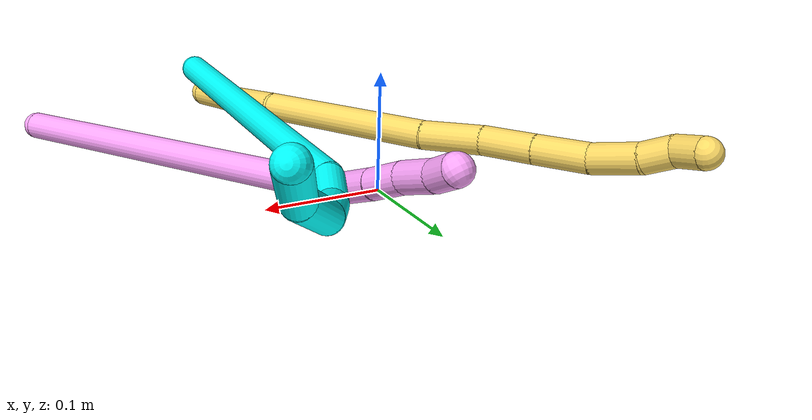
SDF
<sdf version="1.7">
 <world name="default">
  <model name="3">
   <static>0</static>
   <link name="3">
    <collision name="collision-cylinder-e_1_1_4">
     <pose>0.004103 0.107489 -0.111752 -2.37563 0.026456 -0.065649</pose>
     <geometry><cylinder><radius>0.0125</radius><length>0.310221</length></cylinder></geometry>
     <surface>
      <friction><ode><mu>1.16</mu><mu2>1.16</mu2><slip1>0</slip1><slip2>0</slip2></ode></friction>
      <contact><ode><kp>1e+06</kp><kd>1</kd><max_vel>0</max_vel><min_depth>0.001</min_depth></ode></contact>
     </surface>
    </collision>
    <visual name="visual-cylinder-e_1_1_4">
     <pose>0.004103 0.107489 -0.111752 -2.37563 0.026456 -0.065649</pose>
     <geometry><cylinder><radius>0.0125</radius><length>0.310221</length></cylinder></geometry>
     <material><ambient>0.003922 1 0.996078 1</ambient></material>
    </visual>
    <collision name="collision-cylinder-e_2_4_5">
     <pose>0.002368 0.224161 -0.238427 -2.59004 -0.321607 1.04094</pose>
     <geometry><cylinder><radius>0.0125</radius><length>0.036938</length></cylinder></geometry>
     <surface>
      <friction><ode><mu>1.16</mu><mu2>1.16</mu2><slip1>0</slip1><slip2>0</slip2></ode></friction>
      <contact><ode><kp>1e+06</kp><kd>1</kd><max_vel>0</max_vel><min_depth>0.001</min_depth></ode></contact>
     </surface>
    </collision>
    <visual name="visual-cylinder-e_2_4_5">
     <pose>0.002368 0.224161 -0.238427 -2.59004 -0.321607 1.04094</pose>
     <geometry><cylinder><radius>0.0125</radius><length>0.036938</length></cylinder></geometry>
     <material><ambient>0.003922 1 0.996078 1</ambient></material>
    </visual>
    <collision name="collision-cylinder-e_3_5_6">
     <pose>-0.005617 0.237325 -0.273497 -2.94644 -0.1042 0.978982</pose>
     <geometry><cylinder><radius>0.0125</radius><length>0.041297</length></cylinder></geometry>
     <surface>
      <friction><ode><mu>1.16</mu><mu2>1.16</mu2><slip1>0</slip1><slip2>0</slip2></ode></friction>
      <contact><ode><kp>1e+06</kp><kd>1</kd><max_vel>0</max_vel><min_depth>0.001</min_depth></ode></contact>
     </surface>
    </collision>
    <visual name="visual-cylinder-e_3_5_6">
     <pose>-0.005617 0.237325 -0.273497 -2.94644 -0.1042 0.978982</pose>
     <geometry><cylinder><radius>0.0125</radius><length>0.041297</length></cylinder></geometry>
     <material><ambient>0.003922 1 0.996078 1</ambient></material>
    </visual>
    <collision name="collision-cylinder-e_4_6_7">
     <pose>-0.005648 0.235587 -0.321812 2.94125 0.073495 0.701326</pose>
     <geometry><cylinder><radius>0.0125</radius><length>0.057642</length></cylinder></geometry>
     <surface>
      <friction><ode><mu>1.16</mu><mu2>1.16</mu2><slip1>0</slip1><slip2>0</slip2></ode></friction>
      <contact><ode><kp>1e+06</kp><kd>1</kd><max_vel>0</max_vel><min_depth>0.001</min_depth></ode></contact>
     </surface>
    </collision>
    <visual name="visual-cylinder-e_4_6_7">
     <pose>-0.005648 0.235587 -0.321812 2.94125 0.073495 0.701326</pose>
     <geometry><cylinder><radius>0.0125</radius><length>0.057642</length></cylinder></geometry>
     <material><ambient>0.003922 1 0.996078 1</ambient></material>
    </visual>
    <collision name="collision-cylinder-e_5_7_2">
     <pose>0.006975 0.226639 -0.374589 3.01118 0.400469 2.51904</pose>
     <geometry><cylinder><radius>0.0125</radius><length>0.053902</length></cylinder></geometry>
     <surface>
      <friction><ode><mu>1.16</mu><mu2>1.16</mu2><slip1>0</slip1><slip2>0</slip2></ode></friction>
      <contact><ode><kp>1e+06</kp><kd>1</kd><max_vel>0</max_vel><min_depth>0.001</min_depth></ode></contact>
     </surface>
    </collision>
    <visual name="visual-cylinder-e_5_7_2">
     <pose>0.006975 0.226639 -0.374589 3.01118 0.400469 2.51904</pose>
     <geometry><cylinder><radius>0.0125</radius><length>0.053902</length></cylinder></geometry>
     <material><ambient>0.003922 1 0.996078 1</ambient></material>
    </visual>
    <collision name="collision-sphere-2">
     <pose>0.017482 0.223412 -0.399197 0 -0 0</pose>
     <geometry><sphere><radius>0.0125</radius></sphere></geometry>
     <surface>
      <friction><ode><mu>1.16</mu><mu2>1.16</mu2><slip1>0</slip1><slip2>0</slip2></ode></friction>
      <contact><ode><kp>1e+06</kp><kd>1</kd><max_vel>0</max_vel><min_depth>0.001</min_depth></ode></contact>
     </surface>
    </collision>
    <visual name="visual-sphere-2">
     <pose>0.017482 0.223412 -0.399197 0 -0 0</pose>
     <geometry><sphere><radius>0.0125</radius></sphere></geometry>
     <material><ambient>0.003922 1 0.996078 1</ambient></material>
    </visual>
    <collision name="collision-sphere-7">
     <pose>-0.003532 0.229867 -0.34998 0 -0 0</pose>
     <geometry><sphere><radius>0.0125</radius></sphere></geometry>
     <surface>
      <friction><ode><mu>1.16</mu><mu2>1.16</mu2><slip1>0</slip1><slip2>0</slip2></ode></friction>
      <contact><ode><kp>1e+06</kp><kd>1</kd><max_vel>0</max_vel><min_depth>0.001</min_depth></ode></contact>
     </surface>
    </collision>
    <visual name="visual-sphere-7">
     <pose>-0.003532 0.229867 -0.34998 0 -0 0</pose>
     <geometry><sphere><radius>0.0125</radius></sphere></geometry>
     <material><ambient>0.003922 1 0.996078 1</ambient></material>
    </visual>
    <collision name="collision-sphere-6">
     <pose>-0.007765 0.241307 -0.293644 0 -0 0</pose>
     <geometry><sphere><radius>0.0125</radius></sphere></geometry>
     <surface>
      <friction><ode><mu>1.16</mu><mu2>1.16</mu2><slip1>0</slip1><slip2>0</slip2></ode></friction>
      <contact><ode><kp>1e+06</kp><kd>1</kd><max_vel>0</max_vel><min_depth>0.001</min_depth></ode></contact>
     </surface>
    </collision>
    <visual name="visual-sphere-6">
     <pose>-0.007765 0.241307 -0.293644 0 -0 0</pose>
     <geometry><sphere><radius>0.0125</radius></sphere></geometry>
     <material><ambient>0.003922 1 0.996078 1</ambient></material>
    </visual>
    <collision name="collision-sphere-5">
     <pose>-0.003469 0.233342 -0.253351 0 -0 0</pose>
     <geometry><sphere><radius>0.0125</radius></sphere></geometry>
     <surface>
      <friction><ode><mu>1.16</mu><mu2>1.16</mu2><slip1>0</slip1><slip2>0</slip2></ode></friction>
      <contact><ode><kp>1e+06</kp><kd>1</kd><max_vel>0</max_vel><min_depth>0.001</min_depth></ode></contact>
     </surface>
    </collision>
    <visual name="visual-sphere-5">
     <pose>-0.003469 0.233342 -0.253351 0 -0 0</pose>
     <geometry><sphere><radius>0.0125</radius></sphere></geometry>
     <material><ambient>0.003922 1 0.996078 1</ambient></material>
    </visual>
    <collision name="collision-sphere-1">
     <geometry><sphere><radius>0.0125</radius></sphere></geometry>
     <surface>
      <friction><ode><mu>1.16</mu><mu2>1.16</mu2><slip1>0</slip1><slip2>0</slip2></ode></friction>
      <contact><ode><kp>1e+06</kp><kd>1</kd><max_vel>0</max_vel><min_depth>0.001</min_depth></ode></contact>
     </surface>
    </collision>
    <visual name="visual-sphere-1">
     <geometry><sphere><radius>0.0125</radius></sphere></geometry>
     <material><ambient>0.003922 1 0.996078 1</ambient></material>
    </visual>
    <collision name="collision-sphere-4">
     <pose>0.008206 0.214979 -0.223503 0 -0 0</pose>
     <geometry><sphere><radius>0.0125</radius></sphere></geometry>
     <surface>
      <friction><ode><mu>1.16</mu><mu2>1.16</mu2><slip1>0</slip1><slip2>0</slip2></ode></friction>
      <contact><ode><kp>1e+06</kp><kd>1</kd><max_vel>0</max_vel><min_depth>0.001</min_depth></ode></contact>
     </surface>
    </collision>
    <visual name="visual-sphere-4">
     <pose>0.008206 0.214979 -0.223503 0 -0 0</pose>
     <geometry><sphere><radius>0.0125</radius></sphere></geometry>
     <material><ambient>0.003922 1 0.996078 1</ambient></material>
    </visual>
    <inertial>
     <pose>0.002358 0.154445 -0.187021 0 -0 0</pose>
     <mass>0.5</mass>
     <inertia>
      <ixx>0.002371</ixx>
      <ixy>0</ixy>
      <ixz>0</ixz>
      <iyy>-0.001917</iyy>
      <iyz>0</iyz>
      <izz>-0.001833</izz>
     </inertia>
    </inertial>
   </link>
   <pose>0.071751 -0.263397 0.050299 -2.23966 -0.92688 3.06088</pose>
  </model>
  <model name="4">
   <static>0</static>
   <link name="4">
    <collision name="collision-cylinder-e_1_1_4">
     <pose>-0.065081 0.109879 -0.0999 -2.30866 -0.413036 0.884655</pose>
     <geometry><cylinder><radius>0.0125</radius><length>0.324277</length></cylinder></geometry>
     <surface>
      <friction><ode><mu>1.16</mu><mu2>1.16</mu2><slip1>0</slip1><slip2>0</slip2></ode></friction>
      <contact><ode><kp>1e+06</kp><kd>1</kd><max_vel>0</max_vel><min_depth>0.001</min_depth></ode></contact>
     </surface>
    </collision>
    <visual name="visual-cylinder-e_1_1_4">
     <pose>-0.065081 0.109879 -0.0999 -2.30866 -0.413036 0.884655</pose>
     <geometry><cylinder><radius>0.0125</radius><length>0.324277</length></cylinder></geometry>
     <material><ambient>1 0.65098 0.996078 1</ambient></material>
    </visual>
    <collision name="collision-cylinder-e_2_4_5">
     <pose>-0.131229 0.23498 -0.209556 -2.14079 -0.058952 0.107735</pose>
     <geometry><cylinder><radius>0.0125</radius><length>0.036224</length></cylinder></geometry>
     <surface>
      <friction><ode><mu>1.16</mu><mu2>1.16</mu2><slip1>0</slip1><slip2>0</slip2></ode></friction>
      <contact><ode><kp>1e+06</kp><kd>1</kd><max_vel>0</max_vel><min_depth>0.001</min_depth></ode></contact>
     </surface>
    </collision>
    <visual name="visual-cylinder-e_2_4_5">
     <pose>-0.131229 0.23498 -0.209556 -2.14079 -0.058952 0.107735</pose>
     <geometry><cylinder><radius>0.0125</radius><length>0.036224</length></cylinder></geometry>
     <material><ambient>1 0.65098 0.996078 1</ambient></material>
    </visual>
    <collision name="collision-cylinder-e_3_5_6">
     <pose>-0.136267 0.272861 -0.227345 -1.91146 -0.163672 0.231154</pose>
     <geometry><cylinder><radius>0.0125</radius><length>0.048732</length></cylinder></geometry>
     <surface>
      <friction><ode><mu>1.16</mu><mu2>1.16</mu2><slip1>0</slip1><slip2>0</slip2></ode></friction>
      <contact><ode><kp>1e+06</kp><kd>1</kd><max_vel>0</max_vel><min_depth>0.001</min_depth></ode></contact>
     </surface>
    </collision>
    <visual name="visual-cylinder-e_3_5_6">
     <pose>-0.136267 0.272861 -0.227345 -1.91146 -0.163672 0.231154</pose>
     <geometry><cylinder><radius>0.0125</radius><length>0.048732</length></cylinder></geometry>
     <material><ambient>1 0.65098 0.996078 1</ambient></material>
    </visual>
    <collision name="collision-cylinder-e_4_6_7">
     <pose>-0.143998 0.310524 -0.240113 -1.87651 -0.23462 0.318825</pose>
     <geometry><cylinder><radius>0.0125</radius><length>0.032354</length></cylinder></geometry>
     <surface>
      <friction><ode><mu>1.16</mu><mu2>1.16</mu2><slip1>0</slip1><slip2>0</slip2></ode></friction>
      <contact><ode><kp>1e+06</kp><kd>1</kd><max_vel>0</max_vel><min_depth>0.001</min_depth></ode></contact>
     </surface>
    </collision>
    <visual name="visual-cylinder-e_4_6_7">
     <pose>-0.143998 0.310524 -0.240113 -1.87651 -0.23462 0.318825</pose>
     <geometry><cylinder><radius>0.0125</radius><length>0.032354</length></cylinder></geometry>
     <material><ambient>1 0.65098 0.996078 1</ambient></material>
    </visual>
    <collision name="collision-cylinder-e_5_7_8">
     <pose>-0.1494 0.341202 -0.25116 -1.95365 -0.096853 0.143285</pose>
     <geometry><cylinder><radius>0.0125</radius><length>0.033953</length></cylinder></geometry>
     <surface>
      <friction><ode><mu>1.16</mu><mu2>1.16</mu2><slip1>0</slip1><slip2>0</slip2></ode></friction>
      <contact><ode><kp>1e+06</kp><kd>1</kd><max_vel>0</max_vel><min_depth>0.001</min_depth></ode></contact>
     </surface>
    </collision>
    <visual name="visual-cylinder-e_5_7_8">
     <pose>-0.1494 0.341202 -0.25116 -1.95365 -0.096853 0.143285</pose>
     <geometry><cylinder><radius>0.0125</radius><length>0.033953</length></cylinder></geometry>
     <material><ambient>1 0.65098 0.996078 1</ambient></material>
    </visual>
    <collision name="collision-cylinder-e_6_8_2">
     <pose>-0.151288 0.368814 -0.260119 -1.78893 -0.020156 0.025112</pose>
     <geometry><cylinder><radius>0.0125</radius><length>0.02446</length></cylinder></geometry>
     <surface>
      <friction><ode><mu>1.16</mu><mu2>1.16</mu2><slip1>0</slip1><slip2>0</slip2></ode></friction>
      <contact><ode><kp>1e+06</kp><kd>1</kd><max_vel>0</max_vel><min_depth>0.001</min_depth></ode></contact>
     </surface>
    </collision>
    <visual name="visual-cylinder-e_6_8_2">
     <pose>-0.151288 0.368814 -0.260119 -1.78893 -0.020156 0.025112</pose>
     <geometry><cylinder><radius>0.0125</radius><length>0.02446</length></cylinder></geometry>
     <material><ambient>1 0.65098 0.996078 1</ambient></material>
    </visual>
    <collision name="collision-sphere-2">
     <pose>-0.151535 0.380751 -0.262765 0 -0 0</pose>
     <geometry><sphere><radius>0.0125</radius></sphere></geometry>
     <surface>
      <friction><ode><mu>1.16</mu><mu2>1.16</mu2><slip1>0</slip1><slip2>0</slip2></ode></friction>
      <contact><ode><kp>1e+06</kp><kd>1</kd><max_vel>0</max_vel><min_depth>0.001</min_depth></ode></contact>
     </surface>
    </collision>
    <visual name="visual-sphere-2">
     <pose>-0.151535 0.380751 -0.262765 0 -0 0</pose>
     <geometry><sphere><radius>0.0125</radius></sphere></geometry>
     <material><ambient>1 0.65098 0.996078 1</ambient></material>
    </visual>
    <collision name="collision-sphere-4">
     <pose>-0.130162 0.219758 -0.199799 0 -0 0</pose>
     <geometry><sphere><radius>0.0125</radius></sphere></geometry>
     <surface>
      <friction><ode><mu>1.16</mu><mu2>1.16</mu2><slip1>0</slip1><slip2>0</slip2></ode></friction>
      <contact><ode><kp>1e+06</kp><kd>1</kd><max_vel>0</max_vel><min_depth>0.001</min_depth></ode></contact>
     </surface>
    </collision>
    <visual name="visual-sphere-4">
     <pose>-0.130162 0.219758 -0.199799 0 -0 0</pose>
     <geometry><sphere><radius>0.0125</radius></sphere></geometry>
     <material><ambient>1 0.65098 0.996078 1</ambient></material>
    </visual>
    <collision name="collision-sphere-1">
     <geometry><sphere><radius>0.0125</radius></sphere></geometry>
     <surface>
      <friction><ode><mu>1.16</mu><mu2>1.16</mu2><slip1>0</slip1><slip2>0</slip2></ode></friction>
      <contact><ode><kp>1e+06</kp><kd>1</kd><max_vel>0</max_vel><min_depth>0.001</min_depth></ode></contact>
     </surface>
    </collision>
    <visual name="visual-sphere-1">
     <geometry><sphere><radius>0.0125</radius></sphere></geometry>
     <material><ambient>1 0.65098 0.996078 1</ambient></material>
    </visual>
    <collision name="collision-sphere-8">
     <pose>-0.151042 0.356876 -0.257473 0 -0 0</pose>
     <geometry><sphere><radius>0.0125</radius></sphere></geometry>
     <surface>
      <friction><ode><mu>1.16</mu><mu2>1.16</mu2><slip1>0</slip1><slip2>0</slip2></ode></friction>
      <contact><ode><kp>1e+06</kp><kd>1</kd><max_vel>0</max_vel><min_depth>0.001</min_depth></ode></contact>
     </surface>
    </collision>
    <visual name="visual-sphere-8">
     <pose>-0.151042 0.356876 -0.257473 0 -0 0</pose>
     <geometry><sphere><radius>0.0125</radius></sphere></geometry>
     <material><ambient>1 0.65098 0.996078 1</ambient></material>
    </visual>
    <collision name="collision-sphere-5">
     <pose>-0.132296 0.250203 -0.219313 0 -0 0</pose>
     <geometry><sphere><radius>0.0125</radius></sphere></geometry>
     <surface>
      <friction><ode><mu>1.16</mu><mu2>1.16</mu2><slip1>0</slip1><slip2>0</slip2></ode></friction>
      <contact><ode><kp>1e+06</kp><kd>1</kd><max_vel>0</max_vel><min_depth>0.001</min_depth></ode></contact>
     </surface>
    </collision>
    <visual name="visual-sphere-5">
     <pose>-0.132296 0.250203 -0.219313 0 -0 0</pose>
     <geometry><sphere><radius>0.0125</radius></sphere></geometry>
     <material><ambient>1 0.65098 0.996078 1</ambient></material>
    </visual>
    <collision name="collision-sphere-6">
     <pose>-0.140237 0.29552 -0.235377 0 -0 0</pose>
     <geometry><sphere><radius>0.0125</radius></sphere></geometry>
     <surface>
      <friction><ode><mu>1.16</mu><mu2>1.16</mu2><slip1>0</slip1><slip2>0</slip2></ode></friction>
      <contact><ode><kp>1e+06</kp><kd>1</kd><max_vel>0</max_vel><min_depth>0.001</min_depth></ode></contact>
     </surface>
    </collision>
    <visual name="visual-sphere-6">
     <pose>-0.140237 0.29552 -0.235377 0 -0 0</pose>
     <geometry><sphere><radius>0.0125</radius></sphere></geometry>
     <material><ambient>1 0.65098 0.996078 1</ambient></material>
    </visual>
    <collision name="collision-sphere-7">
     <pose>-0.147758 0.325529 -0.244848 0 -0 0</pose>
     <geometry><sphere><radius>0.0125</radius></sphere></geometry>
     <surface>
      <friction><ode><mu>1.16</mu><mu2>1.16</mu2><slip1>0</slip1><slip2>0</slip2></ode></friction>
      <contact><ode><kp>1e+06</kp><kd>1</kd><max_vel>0</max_vel><min_depth>0.001</min_depth></ode></contact>
     </surface>
    </collision>
    <visual name="visual-sphere-7">
     <pose>-0.147758 0.325529 -0.244848 0 -0 0</pose>
     <geometry><sphere><radius>0.0125</radius></sphere></geometry>
     <material><ambient>1 0.65098 0.996078 1</ambient></material>
    </visual>
    <inertial>
     <pose>-0.091861 0.176186 -0.147448 0 -0 0</pose>
     <mass>0.5</mass>
     <inertia>
      <ixx>0.003699</ixx>
      <ixy>0</ixy>
      <ixz>0</ixz>
      <iyy>0.001488</iyy>
      <iyz>0</iyz>
      <izz>-0.000831</izz>
     </inertia>
    </inertial>
   </link>
   <pose>0.228916 -0.288467 0.002937 0.707265 0.142525 0.141536</pose>
  </model>
  <model name="5">
   <static>0</static>
   <link name="5">
    <collision name="collision-cylinder-e_1_1_4">
     <pose>-0.018006 0.015815 -0.001954 -1.69371 -0.846343 0.942348</pose>
     <geometry><cylinder><radius>0.0125</radius><length>0.04809</length></cylinder></geometry>
     <surface>
      <friction><ode><mu>1.16</mu><mu2>1.16</mu2><slip1>0</slip1><slip2>0</slip2></ode></friction>
      <contact><ode><kp>1e+06</kp><kd>1</kd><max_vel>0</max_vel><min_depth>0.001</min_depth></ode></contact>
     </surface>
    </collision>
    <visual name="visual-cylinder-e_1_1_4">
     <pose>-0.018006 0.015815 -0.001954 -1.69371 -0.846343 0.942348</pose>
     <geometry><cylinder><radius>0.0125</radius><length>0.04809</length></cylinder></geometry>
     <material><ambient>1 0.858824 0.4 1</ambient></material>
    </visual>
    <collision name="collision-cylinder-e_2_4_5">
     <pose>-0.058338 0.050908 -0.009672 -1.86133 -0.837269 1.07706</pose>
     <geometry><cylinder><radius>0.0125</radius><length>0.06011</length></cylinder></geometry>
     <surface>
      <friction><ode><mu>1.16</mu><mu2>1.16</mu2><slip1>0</slip1><slip2>0</slip2></ode></friction>
      <contact><ode><kp>1e+06</kp><kd>1</kd><max_vel>0</max_vel><min_depth>0.001</min_depth></ode></contact>
     </surface>
    </collision>
    <visual name="visual-cylinder-e_2_4_5">
     <pose>-0.058338 0.050908 -0.009672 -1.86133 -0.837269 1.07706</pose>
     <geometry><cylinder><radius>0.0125</radius><length>0.06011</length></cylinder></geometry>
     <material><ambient>1 0.858824 0.4 1</ambient></material>
    </visual>
    <collision name="collision-cylinder-e_3_5_6">
     <pose>-0.13523 0.128692 -0.011569 -1.5048 -0.749494 0.705583</pose>
     <geometry><cylinder><radius>0.0125</radius><length>0.16019</length></cylinder></geometry>
     <surface>
      <friction><ode><mu>1.16</mu><mu2>1.16</mu2><slip1>0</slip1><slip2>0</slip2></ode></friction>
      <contact><ode><kp>1e+06</kp><kd>1</kd><max_vel>0</max_vel><min_depth>0.001</min_depth></ode></contact>
     </surface>
    </collision>
    <visual name="visual-cylinder-e_3_5_6">
     <pose>-0.13523 0.128692 -0.011569 -1.5048 -0.749494 0.705583</pose>
     <geometry><cylinder><radius>0.0125</radius><length>0.16019</length></cylinder></geometry>
     <material><ambient>1 0.858824 0.4 1</ambient></material>
    </visual>
    <collision name="collision-cylinder-e_4_6_7">
     <pose>-0.205305 0.208342 -0.005587 -1.4711 -0.630432 0.573904</pose>
     <geometry><cylinder><radius>0.0125</radius><length>0.052616</length></cylinder></geometry>
     <surface>
      <friction><ode><mu>1.16</mu><mu2>1.16</mu2><slip1>0</slip1><slip2>0</slip2></ode></friction>
      <contact><ode><kp>1e+06</kp><kd>1</kd><max_vel>0</max_vel><min_depth>0.001</min_depth></ode></contact>
     </surface>
    </collision>
    <visual name="visual-cylinder-e_4_6_7">
     <pose>-0.205305 0.208342 -0.005587 -1.4711 -0.630432 0.573904</pose>
     <geometry><cylinder><radius>0.0125</radius><length>0.052616</length></cylinder></geometry>
     <material><ambient>1 0.858824 0.4 1</ambient></material>
    </visual>
    <collision name="collision-cylinder-e_5_7_8">
     <pose>-0.236256 0.245994 -0.002977 -1.54086 -0.751872 0.731648</pose>
     <geometry><cylinder><radius>0.0125</radius><length>0.045221</length></cylinder></geometry>
     <surface>
      <friction><ode><mu>1.16</mu><mu2>1.16</mu2><slip1>0</slip1><slip2>0</slip2></ode></friction>
      <contact><ode><kp>1e+06</kp><kd>1</kd><max_vel>0</max_vel><min_depth>0.001</min_depth></ode></contact>
     </surface>
    </collision>
    <visual name="visual-cylinder-e_5_7_8">
     <pose>-0.236256 0.245994 -0.002977 -1.54086 -0.751872 0.731648</pose>
     <geometry><cylinder><radius>0.0125</radius><length>0.045221</length></cylinder></geometry>
     <material><ambient>1 0.858824 0.4 1</ambient></material>
    </visual>
    <collision name="collision-cylinder-e_6_8_9">
     <pose>-0.266846 0.279128 -0.001857 -1.53317 -0.738494 0.713508</pose>
     <geometry><cylinder><radius>0.0125</radius><length>0.045</length></cylinder></geometry>
     <surface>
      <friction><ode><mu>1.16</mu><mu2>1.16</mu2><slip1>0</slip1><slip2>0</slip2></ode></friction>
      <contact><ode><kp>1e+06</kp><kd>1</kd><max_vel>0</max_vel><min_depth>0.001</min_depth></ode></contact>
     </surface>
    </collision>
    <visual name="visual-cylinder-e_6_8_9">
     <pose>-0.266846 0.279128 -0.001857 -1.53317 -0.738494 0.713508</pose>
     <geometry><cylinder><radius>0.0125</radius><length>0.045</length></cylinder></geometry>
     <material><ambient>1 0.858824 0.4 1</ambient></material>
    </visual>
    <collision name="collision-cylinder-e_7_9_10">
     <pose>-0.293925 0.311279 -0.004467 -1.77629 -0.645113 0.780038</pose>
     <geometry><cylinder><radius>0.0125</radius><length>0.039693</length></cylinder></geometry>
     <surface>
      <friction><ode><mu>1.16</mu><mu2>1.16</mu2><slip1>0</slip1><slip2>0</slip2></ode></friction>
      <contact><ode><kp>1e+06</kp><kd>1</kd><max_vel>0</max_vel><min_depth>0.001</min_depth></ode></contact>
     </surface>
    </collision>
    <visual name="visual-cylinder-e_7_9_10">
     <pose>-0.293925 0.311279 -0.004467 -1.77629 -0.645113 0.780038</pose>
     <geometry><cylinder><radius>0.0125</radius><length>0.039693</length></cylinder></geometry>
     <material><ambient>1 0.858824 0.4 1</ambient></material>
    </visual>
    <collision name="collision-cylinder-e_8_10_11">
     <pose>-0.311034 0.337975 -0.010295 -1.79876 -0.423937 0.528994</pose>
     <geometry><cylinder><radius>0.0125</radius><length>0.025163</length></cylinder></geometry>
     <surface>
      <friction><ode><mu>1.16</mu><mu2>1.16</mu2><slip1>0</slip1><slip2>0</slip2></ode></friction>
      <contact><ode><kp>1e+06</kp><kd>1</kd><max_vel>0</max_vel><min_depth>0.001</min_depth></ode></contact>
     </surface>
    </collision>
    <visual name="visual-cylinder-e_8_10_11">
     <pose>-0.311034 0.337975 -0.010295 -1.79876 -0.423937 0.528994</pose>
     <geometry><cylinder><radius>0.0125</radius><length>0.025163</length></cylinder></geometry>
     <material><ambient>1 0.858824 0.4 1</ambient></material>
    </visual>
    <collision name="collision-cylinder-e_9_11_2">
     <pose>-0.324838 0.35622 -0.017189 -2.1172 -0.80597 1.2975</pose>
     <geometry><cylinder><radius>0.0125</radius><length>0.023917</length></cylinder></geometry>
     <surface>
      <friction><ode><mu>1.16</mu><mu2>1.16</mu2><slip1>0</slip1><slip2>0</slip2></ode></friction>
      <contact><ode><kp>1e+06</kp><kd>1</kd><max_vel>0</max_vel><min_depth>0.001</min_depth></ode></contact>
     </surface>
    </collision>
    <visual name="visual-cylinder-e_9_11_2">
     <pose>-0.324838 0.35622 -0.017189 -2.1172 -0.80597 1.2975</pose>
     <geometry><cylinder><radius>0.0125</radius><length>0.023917</length></cylinder></geometry>
     <material><ambient>1 0.858824 0.4 1</ambient></material>
    </visual>
    <collision name="collision-sphere-2">
     <pose>-0.333466 0.363295 -0.021491 0 -0 0</pose>
     <geometry><sphere><radius>0.0125</radius></sphere></geometry>
     <surface>
      <friction><ode><mu>1.16</mu><mu2>1.16</mu2><slip1>0</slip1><slip2>0</slip2></ode></friction>
      <contact><ode><kp>1e+06</kp><kd>1</kd><max_vel>0</max_vel><min_depth>0.001</min_depth></ode></contact>
     </surface>
    </collision>
    <visual name="visual-sphere-2">
     <pose>-0.333466 0.363295 -0.021491 0 -0 0</pose>
     <geometry><sphere><radius>0.0125</radius></sphere></geometry>
     <material><ambient>1 0.858824 0.4 1</ambient></material>
    </visual>
    <collision name="collision-sphere-11">
     <pose>-0.31621 0.349146 -0.012886 0 -0 0</pose>
     <geometry><sphere><radius>0.0125</radius></sphere></geometry>
     <surface>
      <friction><ode><mu>1.16</mu><mu2>1.16</mu2><slip1>0</slip1><slip2>0</slip2></ode></friction>
      <contact><ode><kp>1e+06</kp><kd>1</kd><max_vel>0</max_vel><min_depth>0.001</min_depth></ode></contact>
     </surface>
    </collision>
    <visual name="visual-sphere-11">
     <pose>-0.31621 0.349146 -0.012886 0 -0 0</pose>
     <geometry><sphere><radius>0.0125</radius></sphere></geometry>
     <material><ambient>1 0.858824 0.4 1</ambient></material>
    </visual>
    <collision name="collision-sphere-10">
     <pose>-0.305859 0.326803 -0.007703 0 -0 0</pose>
     <geometry><sphere><radius>0.0125</radius></sphere></geometry>
     <surface>
      <friction><ode><mu>1.16</mu><mu2>1.16</mu2><slip1>0</slip1><slip2>0</slip2></ode></friction>
      <contact><ode><kp>1e+06</kp><kd>1</kd><max_vel>0</max_vel><min_depth>0.001</min_depth></ode></contact>
     </surface>
    </collision>
    <visual name="visual-sphere-10">
     <pose>-0.305859 0.326803 -0.007703 0 -0 0</pose>
     <geometry><sphere><radius>0.0125</radius></sphere></geometry>
     <material><ambient>1 0.858824 0.4 1</ambient></material>
    </visual>
    <collision name="collision-sphere-9">
     <pose>-0.281992 0.295755 -0.001231 0 -0 0</pose>
     <geometry><sphere><radius>0.0125</radius></sphere></geometry>
     <surface>
      <friction><ode><mu>1.16</mu><mu2>1.16</mu2><slip1>0</slip1><slip2>0</slip2></ode></friction>
      <contact><ode><kp>1e+06</kp><kd>1</kd><max_vel>0</max_vel><min_depth>0.001</min_depth></ode></contact>
     </surface>
    </collision>
    <visual name="visual-sphere-9">
     <pose>-0.281992 0.295755 -0.001231 0 -0 0</pose>
     <geometry><sphere><radius>0.0125</radius></sphere></geometry>
     <material><ambient>1 0.858824 0.4 1</ambient></material>
    </visual>
    <collision name="collision-sphere-4">
     <pose>-0.036013 0.03163 -0.003907 0 -0 0</pose>
     <geometry><sphere><radius>0.0125</radius></sphere></geometry>
     <surface>
      <friction><ode><mu>1.16</mu><mu2>1.16</mu2><slip1>0</slip1><slip2>0</slip2></ode></friction>
      <contact><ode><kp>1e+06</kp><kd>1</kd><max_vel>0</max_vel><min_depth>0.001</min_depth></ode></contact>
     </surface>
    </collision>
    <visual name="visual-sphere-4">
     <pose>-0.036013 0.03163 -0.003907 0 -0 0</pose>
     <geometry><sphere><radius>0.0125</radius></sphere></geometry>
     <material><ambient>1 0.858824 0.4 1</ambient></material>
    </visual>
    <collision name="collision-sphere-1">
     <geometry><sphere><radius>0.0125</radius></sphere></geometry>
     <surface>
      <friction><ode><mu>1.16</mu><mu2>1.16</mu2><slip1>0</slip1><slip2>0</slip2></ode></friction>
      <contact><ode><kp>1e+06</kp><kd>1</kd><max_vel>0</max_vel><min_depth>0.001</min_depth></ode></contact>
     </surface>
    </collision>
    <visual name="visual-sphere-1">
     <geometry><sphere><radius>0.0125</radius></sphere></geometry>
     <material><ambient>1 0.858824 0.4 1</ambient></material>
    </visual>
    <collision name="collision-sphere-8">
     <pose>-0.251699 0.262502 -0.002483 0 -0 0</pose>
     <geometry><sphere><radius>0.0125</radius></sphere></geometry>
     <surface>
      <friction><ode><mu>1.16</mu><mu2>1.16</mu2><slip1>0</slip1><slip2>0</slip2></ode></friction>
      <contact><ode><kp>1e+06</kp><kd>1</kd><max_vel>0</max_vel><min_depth>0.001</min_depth></ode></contact>
     </surface>
    </collision>
    <visual name="visual-sphere-8">
     <pose>-0.251699 0.262502 -0.002483 0 -0 0</pose>
     <geometry><sphere><radius>0.0125</radius></sphere></geometry>
     <material><ambient>1 0.858824 0.4 1</ambient></material>
    </visual>
    <collision name="collision-sphere-5">
     <pose>-0.080664 0.070187 -0.015436 0 -0 0</pose>
     <geometry><sphere><radius>0.0125</radius></sphere></geometry>
     <surface>
      <friction><ode><mu>1.16</mu><mu2>1.16</mu2><slip1>0</slip1><slip2>0</slip2></ode></friction>
      <contact><ode><kp>1e+06</kp><kd>1</kd><max_vel>0</max_vel><min_depth>0.001</min_depth></ode></contact>
     </surface>
    </collision>
    <visual name="visual-sphere-5">
     <pose>-0.080664 0.070187 -0.015436 0 -0 0</pose>
     <geometry><sphere><radius>0.0125</radius></sphere></geometry>
     <material><ambient>1 0.858824 0.4 1</ambient></material>
    </visual>
    <collision name="collision-sphere-6">
     <pose>-0.189796 0.187196 -0.007702 0 -0 0</pose>
     <geometry><sphere><radius>0.0125</radius></sphere></geometry>
     <surface>
      <friction><ode><mu>1.16</mu><mu2>1.16</mu2><slip1>0</slip1><slip2>0</slip2></ode></friction>
      <contact><ode><kp>1e+06</kp><kd>1</kd><max_vel>0</max_vel><min_depth>0.001</min_depth></ode></contact>
     </surface>
    </collision>
    <visual name="visual-sphere-6">
     <pose>-0.189796 0.187196 -0.007702 0 -0 0</pose>
     <geometry><sphere><radius>0.0125</radius></sphere></geometry>
     <material><ambient>1 0.858824 0.4 1</ambient></material>
    </visual>
    <collision name="collision-sphere-7">
     <pose>-0.220813 0.229487 -0.003472 0 -0 0</pose>
     <geometry><sphere><radius>0.0125</radius></sphere></geometry>
     <surface>
      <friction><ode><mu>1.16</mu><mu2>1.16</mu2><slip1>0</slip1><slip2>0</slip2></ode></friction>
      <contact><ode><kp>1e+06</kp><kd>1</kd><max_vel>0</max_vel><min_depth>0.001</min_depth></ode></contact>
     </surface>
    </collision>
    <visual name="visual-sphere-7">
     <pose>-0.220813 0.229487 -0.003472 0 -0 0</pose>
     <geometry><sphere><radius>0.0125</radius></sphere></geometry>
     <material><ambient>1 0.858824 0.4 1</ambient></material>
    </visual>
    <inertial>
     <pose>-0.173583 0.176925 -0.007776 0 -0 0</pose>
     <mass>0.5</mass>
     <inertia>
      <ixx>0.00041</ixx>
      <ixy>0</ixy>
      <ixz>0</ixz>
      <iyy>0.000438</iyy>
      <iyz>0</iyz>
      <izz>-2.2e-05</izz>
     </inertia>
    </inertial>
   </link>
   <pose>0.06532 -0.25435 0.02677 2.52261 -0.498172 -1.70926</pose>
  </model>
 </world>
</sdf>
